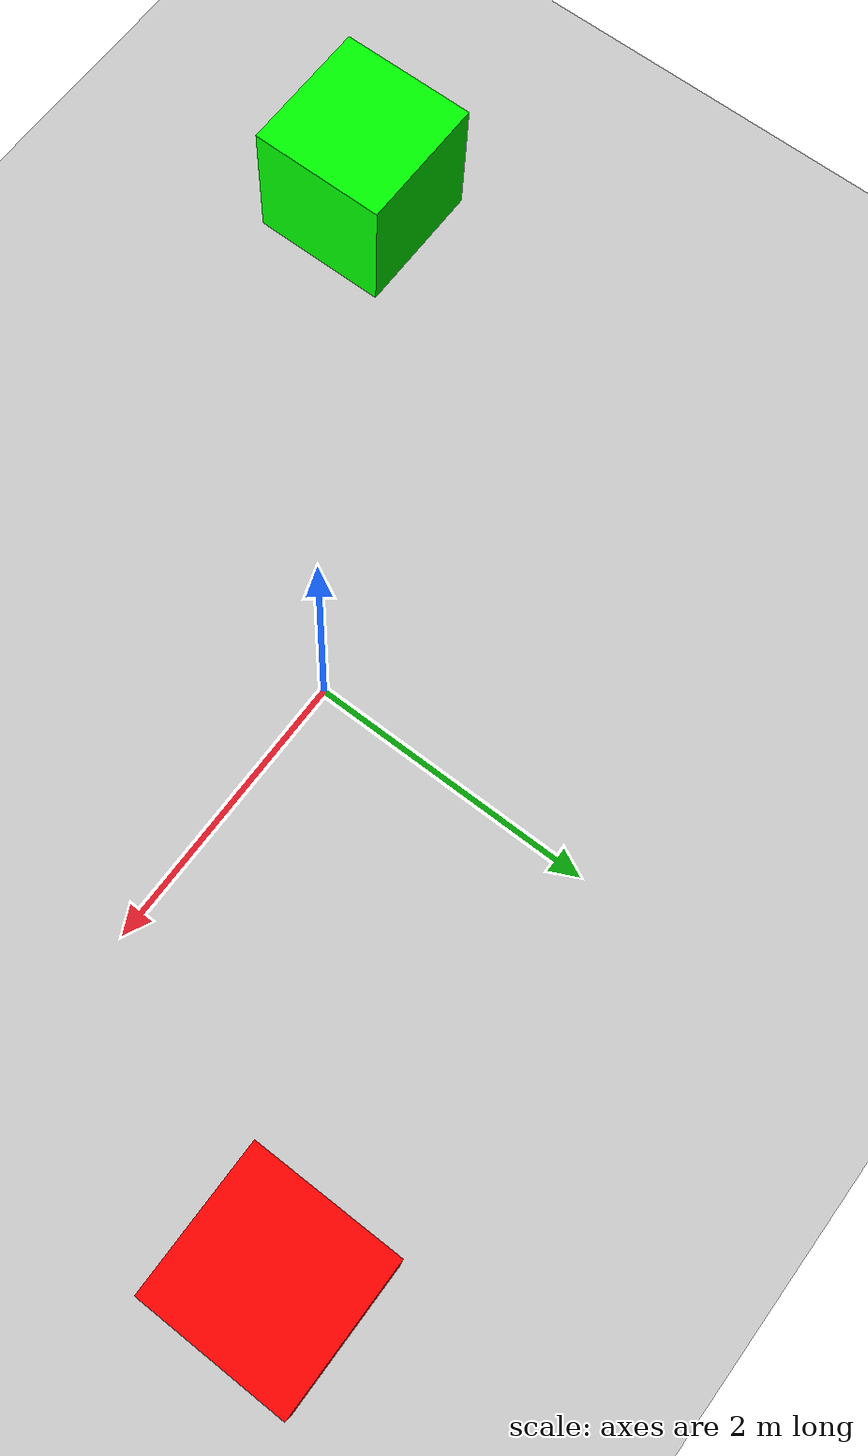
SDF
<?xml version="1.0" ?>
<sdf version="1.8">
  <world name="flat_world">

    <!-- Physics -->
    <physics name="1ms" type="ignored">
      <max_step_size>0.001</max_step_size>
      <real_time_factor>1.0</real_time_factor>
    </physics>

    <!-- Plugins -->
    <plugin filename="gz-sim-physics-system" name="gz::sim::systems::Physics">
    </plugin>
    <plugin filename="gz-sim-user-commands-system" name="gz::sim::systems::UserCommands">
    </plugin>
    <plugin filename="gz-sim-scene-broadcaster-system" name="gz::sim::systems::SceneBroadcaster">
    </plugin>
    <plugin filename="gz-sim-contact-system" name="gz::sim::systems::Contact">
    </plugin>

    <!-- Lighting -->
    <light type="directional" name="sun">
      <cast_shadows>true</cast_shadows>
      <pose>0 0 10 0 0 0</pose>
      <diffuse>0.8 0.8 0.8 1</diffuse>
      <specular>0.2 0.2 0.2 1</specular>
      <attenuation>
        <range>1000</range>
        <constant>0.9</constant>
        <linear>0.01</linear>
        <quadratic>0.001</quadratic>
      </attenuation>
      <direction>-0.5 0.1 -0.9</direction>
    </light>

    <!-- Ground Plane -->
    <model name="ground_plane">
      <static>true</static>
      <link name="link">
        <collision name="collision">
          <geometry>
            <plane>
              <normal>0 0 1</normal>
              <size>100 100</size>
            </plane>
          </geometry>
        </collision>
        <visual name="visual">
          <geometry>
            <plane>
              <normal>0 0 1</normal>
              <size>100 100</size>
            </plane>
          </geometry>
          <material>
            <ambient>0.8 0.8 0.8 1</ambient>
            <diffuse>0.8 0.8 0.8 1</diffuse>
            <specular>0.8 0.8 0.8 1</specular>
          </material>
        </visual>
      </link>
    </model>

    <!-- Some obstacles for testing -->
    <model name="box1">
      <pose>3 2 0.5 0 0 0</pose>
      <static>true</static>
      <link name="link">
        <collision name="collision">
          <geometry>
            <box>
              <size>1 1 1</size>
            </box>
          </geometry>
        </collision>
        <visual name="visual">
          <geometry>
            <box>
              <size>1 1 1</size>
            </box>
          </geometry>
          <material>
            <ambient>1 0 0 1</ambient>
            <diffuse>1 0 0 1</diffuse>
          </material>
        </visual>
      </link>
    </model>

    <model name="box2">
      <pose>-3 -2 0.5 0 0 0</pose>
      <static>true</static>
      <link name="link">
        <collision name="collision">
          <geometry>
            <box>
              <size>1 1 1</size>
            </box>
          </geometry>
        </collision>
        <visual name="visual">
          <geometry>
            <box>
              <size>1 1 1</size>
            </box>
          </geometry>
          <material>
            <ambient>0 1 0 1</ambient>
            <diffuse>0 1 0 1</diffuse>
          </material>
        </visual>
      </link>
    </model>

  </world>
</sdf>
